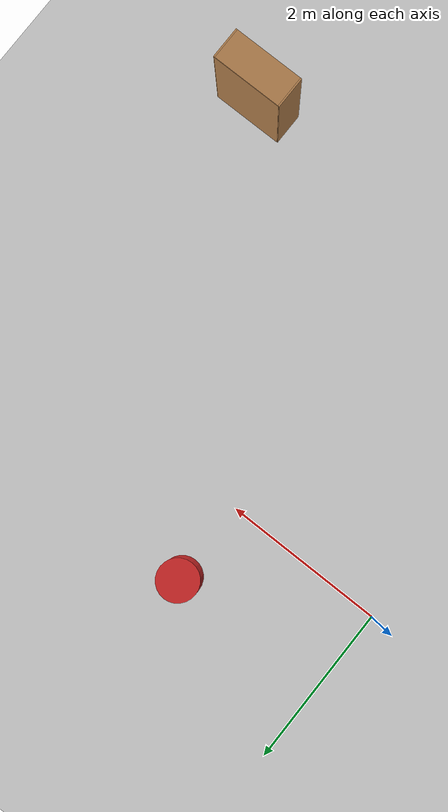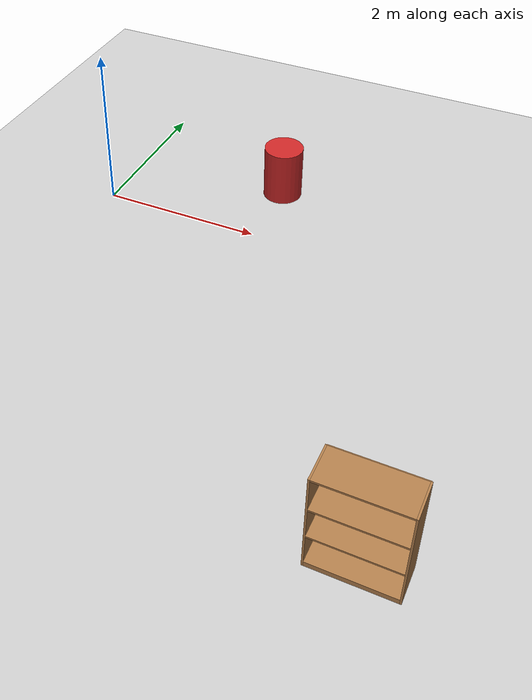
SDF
<sdf version="1.6">
 <world name="default">
  <model name="dynamic_obstacle_path_1">
   <pose>2 1 0.2 0 0 0</pose>
   <link name="link">
    <inertial>
     <mass>70.0</mass>
     <inertia><ixx>8.4</ixx><ixy>0</ixy><ixz>0</ixz><iyy>8.4</iyy><iyz>0</iyz><izz>1.75</izz></inertia>
    </inertial>
    <collision name="collision">
     <geometry><cylinder><radius>0.25</radius><length>1.0</length></cylinder></geometry>
    </collision>
    <visual name="visual">
     <geometry><cylinder><radius>0.25</radius><length>1.0</length></cylinder></geometry>
     <material>
      <script><uri>file://media/materials/scripts/gazebo.material</uri><name>Gazebo/Red</name></script>
     </material>
    </visual>
    <kinematic>1</kinematic>
    <gravity>0</gravity>
   </link>
   <plugin name="obstacle_path_1" filename="/home/he/quad/navigation/DRL-robot-navigation/catkin_ws/src/multi_robot_scenario/plugins/libobstaclePathPlugin.so">
    <velocity>0.5</velocity>
    <orientation>true</orientation>
    <angular_velocity>0.2</angular_velocity>
    <loop>true</loop>
    <path>
     <waypoint>2 1 0.2</waypoint>
     <waypoint>2 1.5 0.2</waypoint>
     <waypoint>1 2 0.2</waypoint>
     <waypoint>0 2 0.2</waypoint>
     <waypoint>0 0 0.2</waypoint>
     <waypoint>1 -1 0.2</waypoint>
     <waypoint>2 0 0.2</waypoint>
     <waypoint>2 1 0.2</waypoint>
    </path>
   </plugin>
   <static>0</static>
  </model>
  <model name="ground_plane">
   <static>1</static>
   <link name="link">
    <collision name="collision">
     <geometry><plane><normal>0 0 1</normal><size>100 100</size></plane></geometry>
     <surface><friction><ode><mu>100</mu><mu2>50</mu2></ode></friction></surface>
    </collision>
    <visual name="visual">
     <cast_shadows>0</cast_shadows>
     <geometry><plane><normal>0 0 1</normal><size>100 100</size></plane></geometry>
     <material>
      <script><uri>file://media/materials/scripts/gazebo.material</uri><name>Gazebo/Grey</name></script>
     </material>
    </visual>
   </link>
  </model>
  <model name="bookshelf">
   <static>1</static>
   <link name="link">
    <inertial><mass>1</mass></inertial>
    <collision name="back">
     <pose>0 0.005 0.6 0 -0 0</pose>
     <geometry><box><size>0.9 0.01 1.2</size></box></geometry>
    </collision>
    <visual name="visual1">
     <pose>0 0.005 0.6 0 -0 0</pose>
     <geometry><box><size>0.9 0.01 1.2</size></box></geometry>
     <material>
      <script><uri>file://media/materials/scripts/gazebo.material</uri><name>Gazebo/Wood</name></script>
     </material>
    </visual>
    <collision name="left_side">
     <pose>0.45 -0.195 0.6 0 -0 0</pose>
     <geometry><box><size>0.02 0.4 1.2</size></box></geometry>
    </collision>
    <visual name="visual2">
     <pose>0.45 -0.195 0.6 0 -0 0</pose>
     <geometry><box><size>0.02 0.4 1.2</size></box></geometry>
     <material>
      <script><uri>file://media/materials/scripts/gazebo.material</uri><name>Gazebo/Wood</name></script>
     </material>
    </visual>
    <collision name="right_side">
     <pose>-0.45 -0.195 0.6 0 -0 0</pose>
     <geometry><box><size>0.02 0.4 1.2</size></box></geometry>
    </collision>
    <visual name="visual3">
     <pose>-0.45 -0.195 0.6 0 -0 0</pose>
     <geometry><box><size>0.02 0.4 1.2</size></box></geometry>
     <material>
      <script><uri>file://media/materials/scripts/gazebo.material</uri><name>Gazebo/Wood</name></script>
     </material>
    </visual>
    <collision name="bottom">
     <pose>0 -0.195 0.03 0 -0 0</pose>
     <geometry><box><size>0.88 0.4 0.06</size></box></geometry>
    </collision>
    <visual name="visual4">
     <pose>0 -0.195 0.03 0 -0 0</pose>
     <geometry><box><size>0.88 0.4 0.06</size></box></geometry>
     <material>
      <script><uri>file://media/materials/scripts/gazebo.material</uri><name>Gazebo/Wood</name></script>
     </material>
    </visual>
    <collision name="top">
     <pose>0 -0.195 1.19 0 -0 0</pose>
     <geometry><box><size>0.88 0.4 0.02</size></box></geometry>
    </collision>
    <visual name="visual5">
     <pose>0 -0.195 1.19 0 -0 0</pose>
     <geometry><box><size>0.88 0.4 0.02</size></box></geometry>
     <material>
      <script><uri>file://media/materials/scripts/gazebo.material</uri><name>Gazebo/Wood</name></script>
     </material>
    </visual>
    <collision name="low_shelf">
     <pose>0 -0.195 0.43 0 -0 0</pose>
     <geometry><box><size>0.88 0.4 0.02</size></box></geometry>
    </collision>
    <visual name="visual6">
     <pose>0 -0.195 0.43 0 -0 0</pose>
     <geometry><box><size>0.88 0.4 0.02</size></box></geometry>
     <material>
      <script><uri>file://media/materials/scripts/gazebo.material</uri><name>Gazebo/Wood</name></script>
     </material>
    </visual>
    <collision name="high_shelf">
     <pose>0 -0.195 0.8 0 -0 0</pose>
     <geometry><box><size>0.88 0.4 0.02</size></box></geometry>
    </collision>
    <visual name="visual7">
     <pose>0 -0.195 0.8 0 -0 0</pose>
     <geometry><box><size>0.88 0.4 0.02</size></box></geometry>
     <material>
      <script><uri>file://media/materials/scripts/gazebo.material</uri><name>Gazebo/Wood</name></script>
     </material>
    </visual>
   </link>
   <pose>4.78412 -3.73836 0 0 -0 0</pose>
  </model>
 </world>
</sdf>
